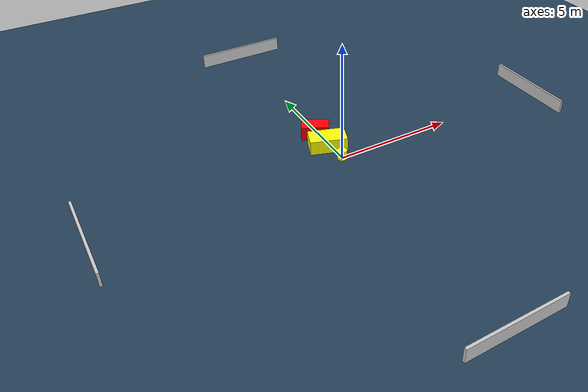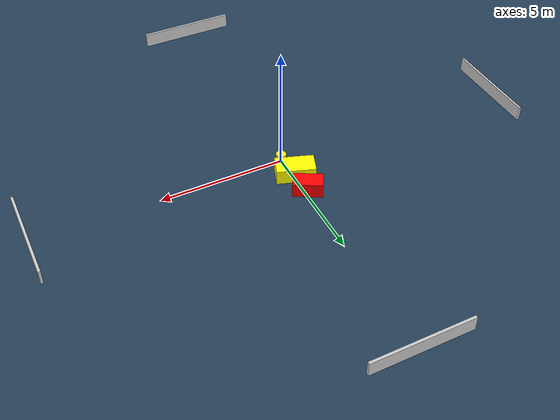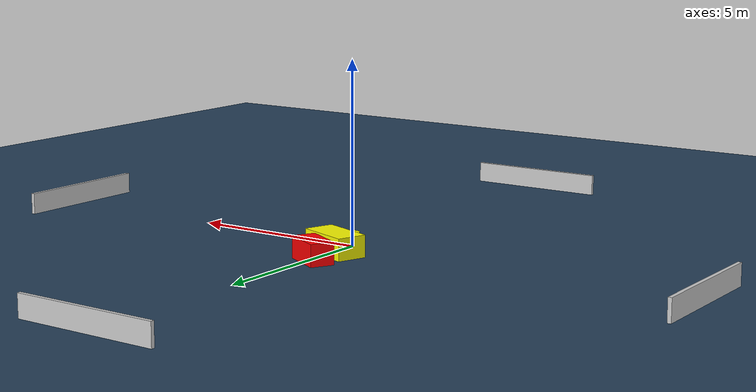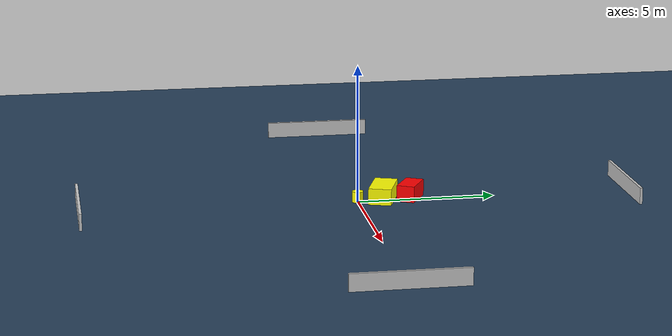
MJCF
<?xml version="1.0" ?>
<mujoco model="generated_environment">
  <option timestep="0.01" integrator="RK4" cone="elliptic"/>
  <default>
    <geom density="1"/>
  </default>
  <asset>
    <texture builtin="gradient" height="3072" name="skybox" rgb1="0.3 0.5 0.7" rgb2="0 0 0" type="skybox" width="512"/>
    <texture builtin="checker" height="300" name="groundplane" rgb1="0.2 0.3 0.4" rgb2="0.1 0.2 0.3" type="2d" width="300"/>
    <material name="groundplane" reflectance="0.2" texrepeat="5 5" texture="groundplane"/>
  </asset>
  <worldbody>
    <light dir="0 0 -1" directional="true" pos="0 0 1.5"/>
    <geom condim="3" friction="0.5 0.005 0.001" material="groundplane" name="floor" pos="0 0 0" size="0 0 0.05" type="plane"/>
    <body name="walls">
      <geom name="wall_1" condim="4" pos="-10.0 0.0 0.3" rgba="0.800000011920929 0.800000011920929 0.800000011920929 1.0" size="0.05 2.0 0.3" type="box"/>
      <geom name="wall_2" condim="4" pos="10.0 0.0 0.3" rgba="0.800000011920929 0.800000011920929 0.800000011920929 1.0" size="0.05 2.0 0.3" type="box"/>
      <geom name="wall_3" condim="4" pos="0.0 -10.0 0.3" rgba="0.800000011920929 0.800000011920929 0.800000011920929 1.0" size="2.0 0.05 0.3" type="box"/>
      <geom name="wall_4" condim="4" pos="0.0 10.0 0.3" rgba="0.800000011920929 0.800000011920929 0.800000011920929 1.0" size="2.0 0.05 0.3" type="box"/>
    </body>
    <body name="robot">
      <joint name="joint_x" type="slide" pos="0 0 0" axis="1 0 0"/>
      <joint name="joint_y" type="slide" pos="0 0 0" axis="0 1 0"/>
      <geom name="robot" type="cylinder" pos="0.0 0.0 0.2" size="0.2 0.2 0.0" mass="5.0" friction="1.0 0.005 0.0001" condim="4" rgba="1.0 1.0 0.0 1.0"/>
    </body>
    <body name="obstacle_1_movable">
      <geom name="obstacle_1_movable" condim="4" pos="-0.130974973827471 0.9559569425480331 0.3" euler="0 0 340.7392513266643" friction="0.0 0.005 0.001" rgba="1.0 1.0 0.0 1.0" size="0.7639829664581212 0.41739090686854036 0.3" type="box" mass="0.1"/>
      <joint type="free"/>
    </body>
    <body name="obstacle_2_static">
      <geom name="obstacle_2_static" condim="4" pos="-0.15551982222404323 1.9577854473557967 0.3" euler="0 0 151.55817578599346" friction="0.0 0.005 0.001" rgba="1.0 0.0 0.0 1.0" size="0.5769284747604984 0.32687523436979965 0.3" type="box"/>
    </body>
  </worldbody>
  <actuator>
    <motor name="actuator_x" joint="joint_x" gear="1" ctrlrange="-1 1"/>
    <motor name="actuator_y" joint="joint_y" gear="1" ctrlrange="-1 1"/>
  </actuator>
</mujoco>
